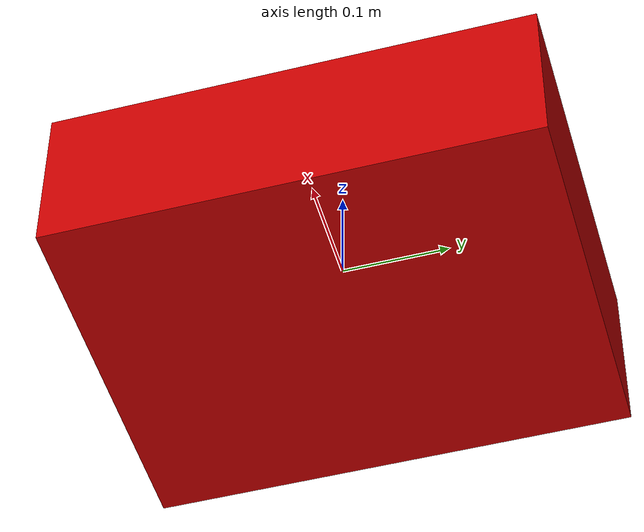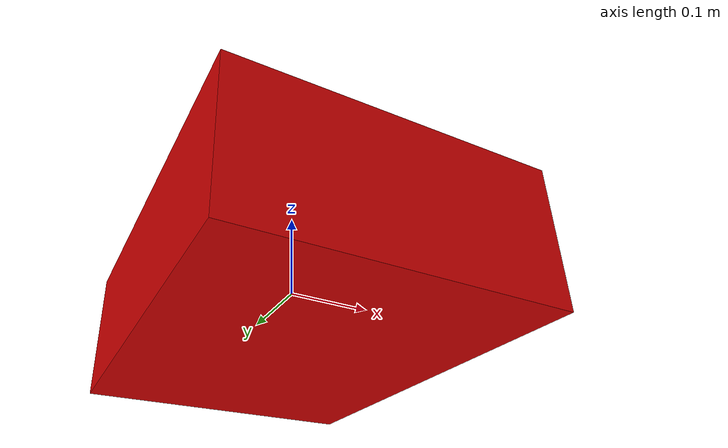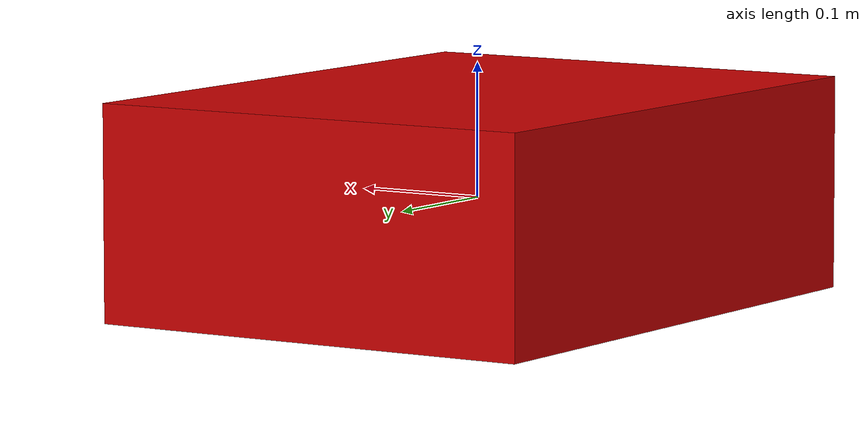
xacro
<?xml version="1.0" encoding="utf-8"?>

<robot name="six_dof_spatial_manipulator" xmlns:xacro="http://ros.org/wiki/xacro">

   <material name="red">
	  <color rgba="0.8 0 0 1"/>
   </material>

  <material name="blue">
	  <color rgba="0 0 0.8 1"/>

   </material>

   <material name="green">
      <color rgba="0.0 0.8 0.0 1.0"/>
   </material>

   <material name="white">
	   <color rgba="1 1 1 1"/>
   </material>

   <link name="world">
      <visual>
         <geometry>
            <box size="0.35 0.45 0.16"/>
         </geometry>
         <material name="red"/>
         <origin rpy="" xyz=""/>
       </visual>
   </link>

   <joint name="base_joint" type="fixed">
        <origin rpy="" xyz=""/>
        <parent link="world"/>
        <child link="base_link"/>
   </joint>

   <link name="base_link">
      <visual>
         <geometry>
            <box size="0.001 0.001 0.075"/>
         </geometry>
         <material name="white"/>
         <origin rpy="" xyz=""/>
       </visual>
   </link>

   <joint name="joint1" type="revolute">
        <axis xyz="0 0 1"/>
        <limit effort="0.01" lower="-0.523" upper="2.62" velocity="0.05"/>
        <origin rpy="" xyz=""/>
        <parent link="base_link"/>
        <child link="link3"/>
   </joint>

   <link name="link3">
      <visual>
         <geometry>
            <box size="0.001 0.145 0.001"/>
         </geometry>
         <material name="white"/>
         <origin rpy="" xyz=""/>
       </visual>
   </link>

   <joint name="joint3" type="revolute">
        <axis xyz="1 0 0"/>
        <limit effort="0.1" lower="-0.523" upper="1.047" velocity="0.5"/>
        <origin rpy="" xyz=""/>
        <parent link="link3"/>
        <child link="link4"/>
   </joint>

   <link name="link4">
      <visual>
         <geometry>
            <box size="0.001 0.07 0.001"/>
         </geometry>
         <material name="white"/>
         <origin rpy="" xyz=""/>
       </visual>
   </link>

   <joint name="joint4" type="revolute">
      <axis xyz="-1 0 0"/>
      <limit effort="0.01" lower="-1.407" upper="0.698" velocity="0.05"/>
      <origin rpy="" xyz=""/>
      <parent link="link4"/>
      <child link="link5"/>
   </joint>

   <link name="link5">
      <visual>
         <geometry>
            <box size="0.01 0.07 0.001"/>
         </geometry>
         <material name="green"/>
         <origin rpy="" xyz=""/>
         </visual>
   </link>

   <joint name="joint5" type="revolute">
        <axis xyz="0 1 0"/>
        <limit effort="0.01" lower="-1.745" upper="1.396" velocity="0.05"/>
        <origin rpy="" xyz=""/>
        <parent link="link5"/>
        <child link="link6"/>
   </joint>

   <link name="link6">
      <visual>
         <geometry>
            <box size="0.015 0.025 0.001"/>
         </geometry>
         <material name="white"/>
         <origin rpy="" xyz=""/>
       </visual>
   </link>

   <joint name="joint6" type="revolute">
        <axis xyz="0 0 1"/>
        <limit effort="0.01" lower="0" upper="3.14" velocity="0.05"/>
        <origin rpy="" xyz=""/>
        <parent link="link6"/>
        <child link="endeff1"/>
   </joint>

   <link name="endeff1">
      <visual>
         <geometry>
            <box size="0.001 0.087 0.001"/>
         </geometry>
         <material name="white"/>
         <origin rpy="" xyz=""/>
       </visual>
   </link>

</robot>
